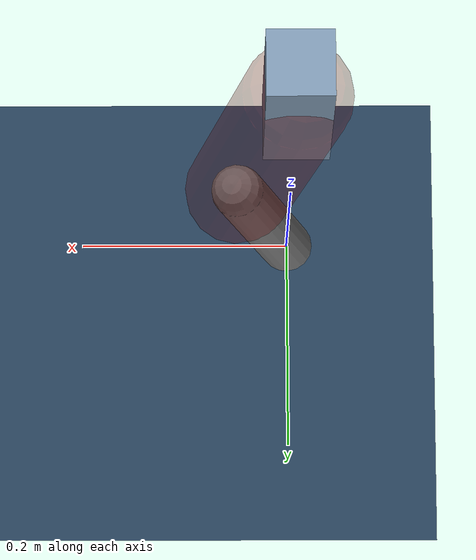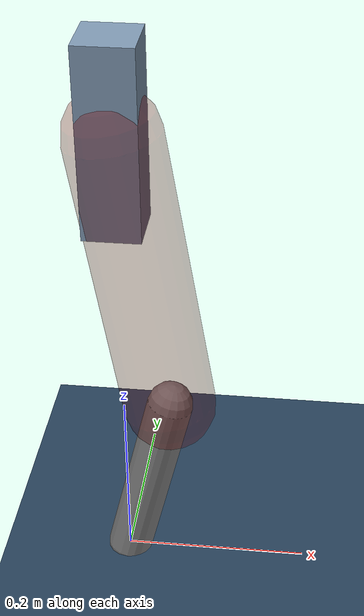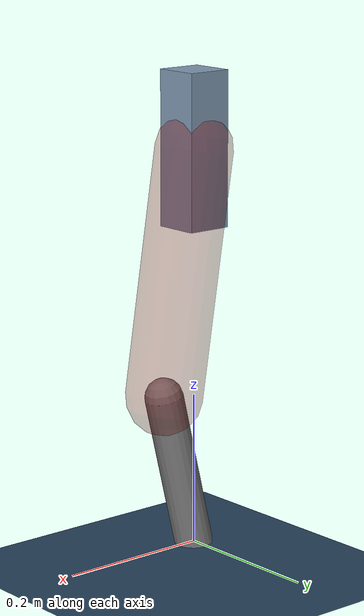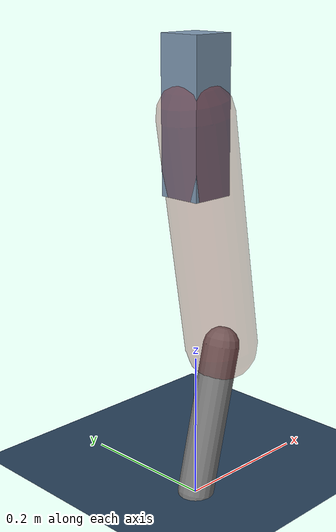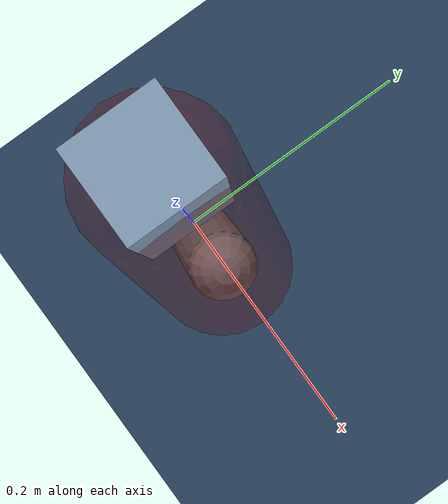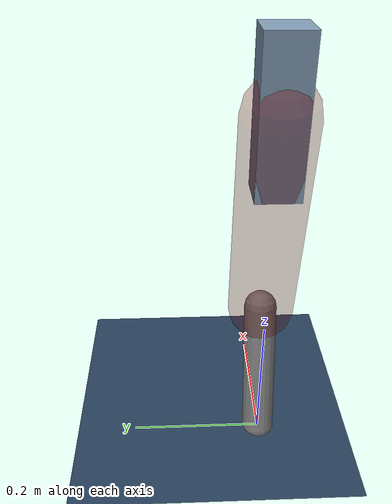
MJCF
<mujoco model="Hopper2D">
	<compiler inertiafromgeom="true" angle="radian" />
	<option timestep="0.001" integrator="implicit" cone="elliptic" solver="Newton" tolerance="1e-10" />

	<default>
		<geom contype="1" conaffinity="1" condim="3" friction="2 0.005 0.0001" solref="0.005 1" />
		<joint limited="true" damping="0.1" />
	</default>

	<asset>
		<texture name="skybox" type="skybox" builtin="gradient" rgb1=".4 .6 .8" rgb2="0 0 0" width="800" height="800" />
		<texture name="grid" type="2d" builtin="checker" rgb1=".1 .2 .3" rgb2=".2 .3 .4" width="300" height="300" mark="edge" markrgb=".2 .3 .4" />
		<material name="ground" texture="grid" texrepeat="1 1" texuniform="true" reflectance="0.1" />
		<material name="leg" rgba="0.5 0.6 0.7 1" />
	</asset>

	<worldbody>

		<geom name="floor" type="plane" size="5 5 0.25" material="ground" />

		<light directional="false" diffuse="0.8 0.8 0.8" specular="0.3 0.3 0.3" pos="0 0 2" dir="0 0 -1" />
		<light mode="targetbodycom" target="base" directional="false" diffuse="0.8 0.8 0.8" specular="0.3 0.3 0.3" pos="0 0 2" dir="0 0 -1" />

		<camera name="fixed" pos="0 -2 1" xyaxes="1 0 0 0 0 1" />
		<camera name="tracking" mode="trackcom" pos="0 -3 1" />

		<body name="root" pos="0 0 0.521837365959231">
			<joint name="slide_x" type="slide" axis="1 0 0" range="-100 100" />
			<joint name="slide_z" type="slide" axis="0 0 1" range="0 10" />

			<body name="base" pos="0 0 0">
				<geom name="torso" type="box" size="0.03 0.03 0.1" mass="2.379" material="leg" />

				<body name="link1" pos="0 0 0" euler="0 1.4129032222576992 0">
					<joint type="hinge" axis="0 -1 0" pos="0 0 0" name="hinge1" limited="true" range="-3.14 3.14" stiffness="0" damping="0.1" />
					<geom name="thigh" type="capsule" fromto="0 0 0 0.31946457582417737 0 0" size="0.05" rgba="0.5 0 0 0.3" mass="1.0417543547252788" />

					<body name="link2" pos="0.31946457582417737 0 0" euler="0 0.39668311452446564 0">
						<joint type="hinge" axis="0 -1 0" pos="0 0 0" name="hinge2" limited="true" range="-3.14 3.14" stiffness="0" damping="0.1" />
						<geom name="shank" type="capsule" fromto="0 0 0 0.2123727901350537 0 0" size="0.025" mass="0.41129823210804295" />

					</body>
				</body>
			</body>
		</body>
	</worldbody>

	<actuator>
		<motor name="torque1" joint="hinge1" ctrlrange="-33.05143051858395 33.05143051858395" ctrllimited="true" gear="1" />
		<motor name="torque2" joint="hinge2" ctrlrange="-89.62093524193763 89.62093524193763" ctrllimited="true" gear="1" />
	</actuator>
</mujoco>
